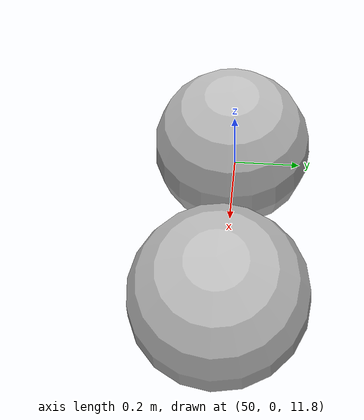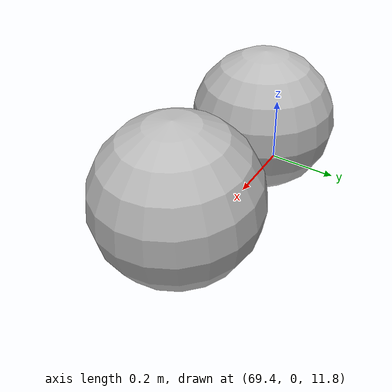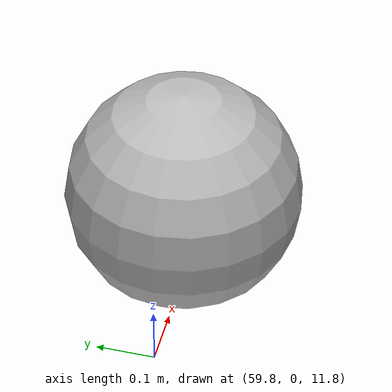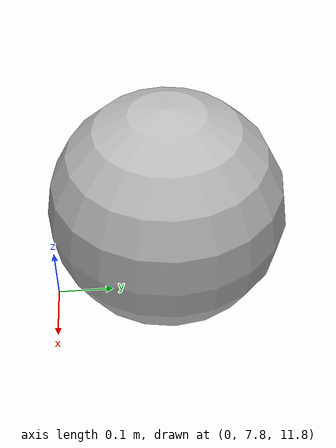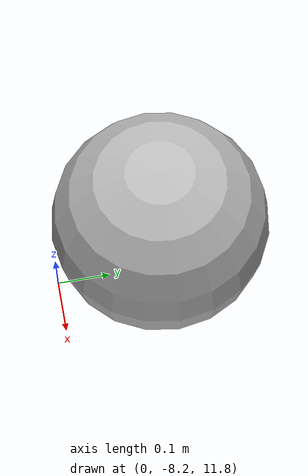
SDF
<sdf version="1.7">
 <world name="probe2">
  <plugin filename="ignition-gazebo-physics-system" name="ignition::gazebo::systems::Physics"/>
  <plugin filename="ignition-gazebo-scene-broadcaster-system" name="ignition::gazebo::systems::SceneBroadcaster"/>
  <gravity>0 0 -9.8</gravity>
  <model name="xb_left">
   <static>false</static>
   <pose>-68 0 12 0 0 0</pose>
   <link name="link">
    <collision name="collision"><geometry><sphere><radius>0.2</radius></sphere></geometry></collision>
    <visual name="visual"><geometry><sphere><radius>0.2</radius></sphere></geometry></visual>
   </link>
  </model>
  <model name="xb_right">
   <static>false</static>
   <pose>-52 0 12 0 0 0</pose>
   <link name="link">
    <collision name="collision"><geometry><sphere><radius>0.2</radius></sphere></geometry></collision>
    <visual name="visual"><geometry><sphere><radius>0.2</radius></sphere></geometry></visual>
   </link>
  </model>
  <model name="yb_top">
   <static>false</static>
   <pose>0 8 12 0 0 0</pose>
   <link name="link">
    <collision name="collision"><geometry><sphere><radius>0.2</radius></sphere></geometry></collision>
    <visual name="visual"><geometry><sphere><radius>0.2</radius></sphere></geometry></visual>
   </link>
  </model>
  <model name="yb_bot">
   <static>false</static>
   <pose>0 -8 12 0 0 0</pose>
   <link name="link">
    <collision name="collision"><geometry><sphere><radius>0.2</radius></sphere></geometry></collision>
    <visual name="visual"><geometry><sphere><radius>0.2</radius></sphere></geometry></visual>
   </link>
  </model>
  <model name="half">
   <static>false</static>
   <pose>60 0 12 0 0 0</pose>
   <link name="link">
    <collision name="collision"><geometry><sphere><radius>0.2</radius></sphere></geometry></collision>
    <visual name="visual"><geometry><sphere><radius>0.2</radius></sphere></geometry></visual>
   </link>
  </model>
  <model name="edge_in">
   <static>false</static>
   <pose>69.5 0 12 0 0 0</pose>
   <link name="link">
    <collision name="collision"><geometry><sphere><radius>0.2</radius></sphere></geometry></collision>
    <visual name="visual"><geometry><sphere><radius>0.2</radius></sphere></geometry></visual>
   </link>
  </model>
  <model name="edge_out">
   <static>false</static>
   <pose>69.9 0 12 0 0 0</pose>
   <link name="link">
    <collision name="collision"><geometry><sphere><radius>0.2</radius></sphere></geometry></collision>
    <visual name="visual"><geometry><sphere><radius>0.2</radius></sphere></geometry></visual>
   </link>
  </model>
  <model name="edge_neg">
   <static>false</static>
   <pose>50.5 0 12 0 0 0</pose>
   <link name="link">
    <collision name="collision"><geometry><sphere><radius>0.2</radius></sphere></geometry></collision>
    <visual name="visual"><geometry><sphere><radius>0.2</radius></sphere></geometry></visual>
   </link>
  </model>
  <model name="edge_negout">
   <static>false</static>
   <pose>50.1 0 12 0 0 0</pose>
   <link name="link">
    <collision name="collision"><geometry><sphere><radius>0.2</radius></sphere></geometry></collision>
    <visual name="visual"><geometry><sphere><radius>0.2</radius></sphere></geometry></visual>
   </link>
  </model>
 </world>
</sdf>
